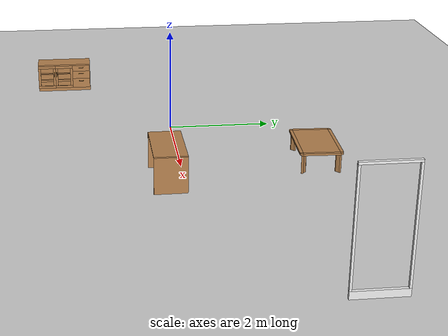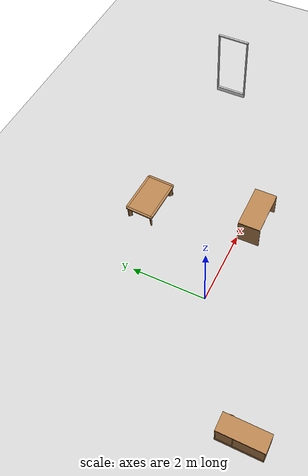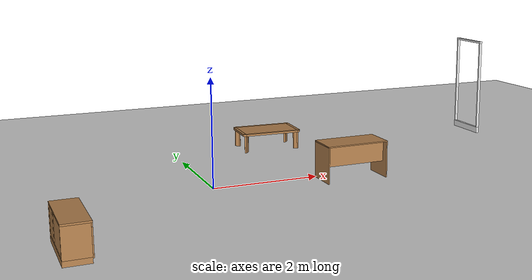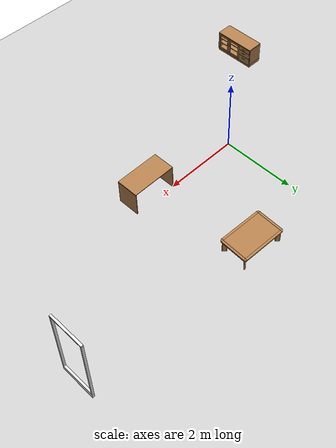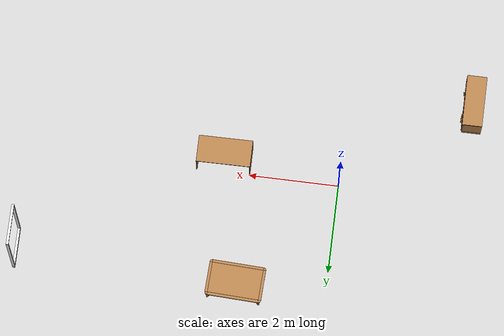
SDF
<sdf version="1.7">
 <world name="default">
  <model name="ground_plane">
   <static>1</static>
   <link name="link">
    <collision name="collision">
     <geometry><plane><normal>0 0 1</normal><size>100 100</size></plane></geometry>
     <surface>
      <contact><collide_bitmask>65535</collide_bitmask></contact>
      <friction><ode><mu>100</mu><mu2>50</mu2></ode></friction>
     </surface>
    </collision>
    <visual name="visual">
     <cast_shadows>0</cast_shadows>
     <geometry><plane><normal>0 0 1</normal><size>100 100</size></plane></geometry>
     <material>
      <script><uri>file://media/materials/scripts/gazebo.material</uri><name>Gazebo/Grey</name></script>
     </material>
    </visual>
   </link>
  </model>
  <model name="living_sideboard">
   <link name="link">
    <inertial>
     <mass>10</mass>
     <inertia><ixx>1</ixx><ixy>0</ixy><ixz>0</ixz><iyy>1</iyy><iyz>0</iyz><izz>1</izz></inertia>
    </inertial>
    <visual name="left_board">
     <pose>-0.23 0.01 0.3375 0 -0 0</pose>
     <geometry><box><size>0.42 0.02 0.495</size></box></geometry>
     <material>
      <script><uri>model://base_materials/wood/scripts/wood.material</uri><name>base_materials/wood</name></script>
     </material>
    </visual>
    <collision name="collision_left_board">
     <pose>-0.23 0.01 0.3375 0 -0 0</pose>
     <geometry><box><size>0.42 0.02 0.495</size></box></geometry>
    </collision>
    <visual name="back_board">
     <pose>-0.42 0.575 0.2925 0 -0 0</pose>
     <geometry><box><size>0.02 1.11 0.585</size></box></geometry>
     <material>
      <script><uri>model://base_materials/wood/scripts/wood.material</uri><name>base_materials/wood</name></script>
     </material>
    </visual>
    <collision name="collision_back_board">
     <pose>-0.42 0.575 0.2925 0 -0 0</pose>
     <geometry><box><size>0.02 1.11 0.585</size></box></geometry>
    </collision>
    <visual name="right_board">
     <pose>-0.23 1.14 0.3375 0 -0 0</pose>
     <geometry><box><size>0.42 0.02 0.495</size></box></geometry>
     <material>
      <script><uri>model://base_materials/wood/scripts/wood.material</uri><name>base_materials/wood</name></script>
     </material>
    </visual>
    <collision name="collision_right_board">
     <pose>-0.23 1.14 0.3375 0 -0 0</pose>
     <geometry><box><size>0.42 0.02 0.495</size></box></geometry>
    </collision>
    <visual name="center_vertical_board1">
     <pose>-0.23 0.74 0.3375 0 -0 0</pose>
     <geometry><box><size>0.42 0.02 0.495</size></box></geometry>
     <material>
      <script><uri>model://base_materials/wood/scripts/wood.material</uri><name>base_materials/wood</name></script>
     </material>
    </visual>
    <collision name="collision_center_vertical_board1">
     <pose>-0.23 0.74 0.3375 0 -0 0</pose>
     <geometry><box><size>0.42 0.02 0.495</size></box></geometry>
    </collision>
    <visual name="top_board">
     <pose>-0.22 0.575 0.6 0 -0 0</pose>
     <geometry><box><size>0.44 1.15 0.03</size></box></geometry>
     <material>
      <script><uri>model://base_materials/wood/scripts/wood.material</uri><name>base_materials/wood</name></script>
     </material>
    </visual>
    <collision name="collision_top_board">
     <pose>-0.22 0.575 0.6 0 -0 0</pose>
     <geometry><box><size>0.44 1.15 0.03</size></box></geometry>
    </collision>
    <visual name="bottom_board">
     <pose>-0.23 0.575 0.045 0 -0 0</pose>
     <geometry><box><size>0.42 1.15 0.09</size></box></geometry>
     <material>
      <script><uri>model://base_materials/wood/scripts/wood.material</uri><name>base_materials/wood</name></script>
     </material>
    </visual>
    <collision name="collision_bottom_board">
     <pose>-0.23 0.575 0.045 0 -0 0</pose>
     <geometry><box><size>0.42 1.15 0.09</size></box></geometry>
    </collision>
    <visual name="1st_shelf">
     <pose>-0.225 0.37 0.259 0 -0 0</pose>
     <geometry><box><size>0.36 0.72 0.018</size></box></geometry>
     <material>
      <script><uri>model://base_materials/wood/scripts/wood.material</uri><name>base_materials/wood</name></script>
     </material>
    </visual>
    <collision name="collision_1st_shelf">
     <pose>-0.225 0.37 0.259 0 -0 0</pose>
     <geometry><box><size>0.36 0.72 0.018</size></box></geometry>
    </collision>
    <visual name="2nd_shelf">
     <pose>-0.225 0.37 0.407 0 -0 0</pose>
     <geometry><box><size>0.36 0.72 0.018</size></box></geometry>
     <material>
      <script><uri>model://base_materials/wood/scripts/wood.material</uri><name>base_materials/wood</name></script>
     </material>
    </visual>
    <collision name="collision_2nd_shelf">
     <pose>-0.225 0.37 0.407 0 -0 0</pose>
     <geometry><box><size>0.36 0.72 0.018</size></box></geometry>
    </collision>
    <visual name="1st_drawer">
     <pose>-0.2025 0.95 0.52 0 -0 0</pose>
     <geometry><box><size>0.405 0.38 0.13</size></box></geometry>
     <material>
      <script><uri>model://base_materials/wood/scripts/wood.material</uri><name>base_materials/wood</name></script>
     </material>
    </visual>
    <collision name="collision_1st_drawer">
     <pose>-0.2025 0.95 0.52 0 -0 0</pose>
     <geometry><box><size>0.405 0.38 0.13</size></box></geometry>
    </collision>
    <visual name="1st_drawer_handle_l1">
     <pose>0.015 0.9015 0.535 3.14159 1.57079 3.14159</pose>
     <geometry><cylinder><radius>0.006</radius><length>0.03</length></cylinder></geometry>
     <material>
      <ambient>1 0.84314 0 1</ambient>
      <diffuse>1 0.84314 0 1</diffuse>
      <specular>0.1 0.1 0.1 1</specular>
     </material>
    </visual>
    <collision name="collision_1st_drawer_handle_l1">
     <pose>0.015 0.9015 0.535 3.14159 1.57079 3.14159</pose>
     <geometry><cylinder><radius>0.006</radius><length>0.03</length></cylinder></geometry>
    </collision>
    <visual name="1st_drawer_handle_l2">
     <pose>0.03 0.9015 0.535 0 -0 0</pose>
     <geometry><sphere><radius>0.006</radius></sphere></geometry>
     <material>
      <ambient>1 0.84314 0 1</ambient>
      <diffuse>1 0.84314 0 1</diffuse>
      <specular>0.1 0.1 0.1 1</specular>
     </material>
    </visual>
    <collision name="collision_1st_drawer_handle_l2">
     <pose>0.03 0.9015 0.535 0 -0 0</pose>
     <geometry><sphere><radius>0.006</radius></sphere></geometry>
    </collision>
    <visual name="1st_drawer_handle_r1">
     <pose>0.015 0.9985 0.535 3.14159 1.57079 3.14159</pose>
     <geometry><cylinder><radius>0.006</radius><length>0.03</length></cylinder></geometry>
     <material>
      <ambient>1 0.84314 0 1</ambient>
      <diffuse>1 0.84314 0 1</diffuse>
      <specular>0.1 0.1 0.1 1</specular>
     </material>
    </visual>
    <collision name="collision_1st_drawer_handle_r1">
     <pose>0.015 0.9985 0.535 3.14159 1.57079 3.14159</pose>
     <geometry><cylinder><radius>0.006</radius><length>0.03</length></cylinder></geometry>
    </collision>
    <visual name="1st_drawer_handle_r2">
     <pose>0.03 0.9985 0.535 0 -0 0</pose>
     <geometry><sphere><radius>0.006</radius></sphere></geometry>
     <material>
      <ambient>1 0.84314 0 1</ambient>
      <diffuse>1 0.84314 0 1</diffuse>
      <specular>0.1 0.1 0.1 1</specular>
     </material>
    </visual>
    <collision name="collision_1st_drawer_handle_r2">
     <pose>0.03 0.9985 0.535 0 -0 0</pose>
     <geometry><sphere><radius>0.006</radius></sphere></geometry>
    </collision>
    <visual name="1st_drawer_handle_center">
     <pose>0.03 0.95 0.535 1.5708 -0 0</pose>
     <geometry><cylinder><radius>0.006</radius><length>0.097</length></cylinder></geometry>
     <material>
      <script><uri>model://base_materials/wood/scripts/wood.material</uri><name>base_materials/wood</name></script>
     </material>
    </visual>
    <collision name="collision_1st_drawer_handle_center">
     <pose>0.03 0.95 0.535 1.5708 -0 0</pose>
     <geometry><cylinder><radius>0.006</radius><length>0.097</length></cylinder></geometry>
    </collision>
    <visual name="2nd_drawer">
     <pose>-0.2025 0.95 0.37 0 -0 0</pose>
     <geometry><box><size>0.405 0.38 0.17</size></box></geometry>
     <material>
      <script><uri>model://base_materials/wood/scripts/wood.material</uri><name>base_materials/wood</name></script>
     </material>
    </visual>
    <collision name="collision_2nd_drawer">
     <pose>-0.2025 0.95 0.37 0 -0 0</pose>
     <geometry><box><size>0.405 0.38 0.17</size></box></geometry>
    </collision>
    <visual name="2nd_drawer_handle_l1">
     <pose>0.015 0.9015 0.405 3.14159 1.57079 3.14159</pose>
     <geometry><cylinder><radius>0.006</radius><length>0.03</length></cylinder></geometry>
     <material>
      <ambient>1 0.84314 0 1</ambient>
      <diffuse>1 0.84314 0 1</diffuse>
      <specular>0.1 0.1 0.1 1</specular>
     </material>
    </visual>
    <collision name="collision_2nd_drawer_handle_l1">
     <pose>0.015 0.9015 0.405 3.14159 1.57079 3.14159</pose>
     <geometry><cylinder><radius>0.006</radius><length>0.03</length></cylinder></geometry>
    </collision>
    <visual name="2nd_drawer_handle_l2">
     <pose>0.03 0.9015 0.405 0 -0 0</pose>
     <geometry><sphere><radius>0.006</radius></sphere></geometry>
     <material>
      <ambient>1 0.84314 0 1</ambient>
      <diffuse>1 0.84314 0 1</diffuse>
      <specular>0.1 0.1 0.1 1</specular>
     </material>
    </visual>
    <collision name="collision_2nd_drawer_handle_l2">
     <pose>0.03 0.9015 0.405 0 -0 0</pose>
     <geometry><sphere><radius>0.006</radius></sphere></geometry>
    </collision>
    <visual name="2nd_drawer_handle_r1">
     <pose>0.015 0.9985 0.405 3.14159 1.57079 3.14159</pose>
     <geometry><cylinder><radius>0.006</radius><length>0.03</length></cylinder></geometry>
     <material>
      <ambient>1 0.84314 0 1</ambient>
      <diffuse>1 0.84314 0 1</diffuse>
      <specular>0.1 0.1 0.1 1</specular>
     </material>
    </visual>
    <collision name="collision_2nd_drawer_handle_r1">
     <pose>0.015 0.9985 0.405 3.14159 1.57079 3.14159</pose>
     <geometry><cylinder><radius>0.006</radius><length>0.03</length></cylinder></geometry>
    </collision>
    <visual name="2nd_drawer_handle_r2">
     <pose>0.03 0.9985 0.405 0 -0 0</pose>
     <geometry><sphere><radius>0.006</radius></sphere></geometry>
     <material>
      <ambient>1 0.84314 0 1</ambient>
      <diffuse>1 0.84314 0 1</diffuse>
      <specular>0.1 0.1 0.1 1</specular>
     </material>
    </visual>
    <collision name="collision_2nd_drawer_handle_r2">
     <pose>0.03 0.9985 0.405 0 -0 0</pose>
     <geometry><sphere><radius>0.006</radius></sphere></geometry>
    </collision>
    <visual name="2nd_drawer_handle_center">
     <pose>0.03 0.95 0.405 1.5708 -0 0</pose>
     <geometry><cylinder><radius>0.006</radius><length>0.097</length></cylinder></geometry>
     <material>
      <script><uri>model://base_materials/wood/scripts/wood.material</uri><name>base_materials/wood</name></script>
     </material>
    </visual>
    <collision name="collision_2nd_drawer_handle_center">
     <pose>0.03 0.95 0.405 1.5708 -0 0</pose>
     <geometry><cylinder><radius>0.006</radius><length>0.097</length></cylinder></geometry>
    </collision>
    <visual name="3rd_drawer">
     <pose>-0.2025 0.95 0.18 0 -0 0</pose>
     <geometry><box><size>0.405 0.38 0.21</size></box></geometry>
     <material>
      <script><uri>model://base_materials/wood/scripts/wood.material</uri><name>base_materials/wood</name></script>
     </material>
    </visual>
    <collision name="collision_3rd_drawer">
     <pose>-0.2025 0.95 0.18 0 -0 0</pose>
     <geometry><box><size>0.405 0.38 0.21</size></box></geometry>
    </collision>
    <visual name="3rd_drawer_handle_l1">
     <pose>0.015 0.9015 0.235 3.14159 1.57079 3.14159</pose>
     <geometry><cylinder><radius>0.006</radius><length>0.03</length></cylinder></geometry>
     <material>
      <ambient>1 0.84314 0 1</ambient>
      <diffuse>1 0.84314 0 1</diffuse>
      <specular>0.1 0.1 0.1 1</specular>
     </material>
    </visual>
    <collision name="collision_3rd_drawer_handle_l1">
     <pose>0.015 0.9015 0.235 3.14159 1.57079 3.14159</pose>
     <geometry><cylinder><radius>0.006</radius><length>0.03</length></cylinder></geometry>
    </collision>
    <visual name="3rd_drawer_handle_l2">
     <pose>0.03 0.9015 0.235 0 -0 0</pose>
     <geometry><sphere><radius>0.006</radius></sphere></geometry>
     <material>
      <ambient>1 0.84314 0 1</ambient>
      <diffuse>1 0.84314 0 1</diffuse>
      <specular>0.1 0.1 0.1 1</specular>
     </material>
    </visual>
    <collision name="collision_3rd_drawer_handle_l2">
     <pose>0.03 0.9015 0.235 0 -0 0</pose>
     <geometry><sphere><radius>0.006</radius></sphere></geometry>
    </collision>
    <visual name="3rd_drawer_handle_r1">
     <pose>0.015 0.9985 0.235 3.14159 1.57079 3.14159</pose>
     <geometry><cylinder><radius>0.006</radius><length>0.03</length></cylinder></geometry>
     <material>
      <ambient>1 0.84314 0 1</ambient>
      <diffuse>1 0.84314 0 1</diffuse>
      <specular>0.1 0.1 0.1 1</specular>
     </material>
    </visual>
    <collision name="collision_3rd_drawer_handle_r1">
     <pose>0.015 0.9985 0.235 3.14159 1.57079 3.14159</pose>
     <geometry><cylinder><radius>0.006</radius><length>0.03</length></cylinder></geometry>
    </collision>
    <visual name="3rd_drawer_handle_r2">
     <pose>0.03 0.9985 0.235 0 -0 0</pose>
     <geometry><sphere><radius>0.006</radius></sphere></geometry>
     <material>
      <ambient>1 0.84314 0 1</ambient>
      <diffuse>1 0.84314 0 1</diffuse>
      <specular>0.1 0.1 0.1 1</specular>
     </material>
    </visual>
    <collision name="collision_3rd_drawer_handle_r2">
     <pose>0.03 0.9985 0.235 0 -0 0</pose>
     <geometry><sphere><radius>0.006</radius></sphere></geometry>
    </collision>
    <visual name="3rd_drawer_handle_center">
     <pose>0.03 0.95 0.235 1.5708 -0 0</pose>
     <geometry><cylinder><radius>0.006</radius><length>0.097</length></cylinder></geometry>
     <material>
      <script><uri>model://base_materials/wood/scripts/wood.material</uri><name>base_materials/wood</name></script>
     </material>
    </visual>
    <collision name="collision_3rd_drawer_handle_center">
     <pose>0.03 0.95 0.235 1.5708 -0 0</pose>
     <geometry><cylinder><radius>0.006</radius><length>0.097</length></cylinder></geometry>
    </collision>
    <visual name="left_door_left_frame">
     <pose>-0.01 0.025 0.3275 0 -0 0</pose>
     <geometry><box><size>0.02 0.05 0.405</size></box></geometry>
     <material>
      <script><uri>model://base_materials/wood/scripts/wood.material</uri><name>base_materials/wood</name></script>
     </material>
    </visual>
    <collision name="collision_left_door_left_frame">
     <pose>-0.01 0.025 0.3275 0 -0 0</pose>
     <geometry><box><size>0.02 0.05 0.405</size></box></geometry>
    </collision>
    <visual name="left_door_right_frame">
     <pose>-0.01 0.355 0.3275 0 -0 0</pose>
     <geometry><box><size>0.02 0.05 0.405</size></box></geometry>
     <material>
      <script><uri>model://base_materials/wood/scripts/wood.material</uri><name>base_materials/wood</name></script>
     </material>
    </visual>
    <collision name="collision_left_door_right_frame">
     <pose>-0.01 0.355 0.3275 0 -0 0</pose>
     <geometry><box><size>0.02 0.05 0.405</size></box></geometry>
    </collision>
    <visual name="left_door_handle_top1">
     <pose>0.015 0.355 0.4475 3.14159 1.57079 3.14159</pose>
     <geometry><cylinder><radius>0.006</radius><length>0.03</length></cylinder></geometry>
     <material>
      <ambient>1 0.84314 0 1</ambient>
      <diffuse>1 0.84314 0 1</diffuse>
      <specular>0.1 0.1 0.1 1</specular>
     </material>
    </visual>
    <collision name="collision_left_door_handle_top1">
     <pose>0.015 0.355 0.4475 3.14159 1.57079 3.14159</pose>
     <geometry><cylinder><radius>0.006</radius><length>0.03</length></cylinder></geometry>
    </collision>
    <visual name="left_door_handle_top2">
     <pose>0.03 0.355 0.4475 0 -0 0</pose>
     <geometry><sphere><radius>0.006</radius></sphere></geometry>
     <material>
      <ambient>1 0.84314 0 1</ambient>
      <diffuse>1 0.84314 0 1</diffuse>
      <specular>0.1 0.1 0.1 1</specular>
     </material>
    </visual>
    <collision name="collision_left_door_handle_top2">
     <pose>0.03 0.355 0.4475 0 -0 0</pose>
     <geometry><sphere><radius>0.006</radius></sphere></geometry>
    </collision>
    <visual name="left_door_handle_bottom1">
     <pose>0.015 0.355 0.3505 3.14159 1.57079 3.14159</pose>
     <geometry><cylinder><radius>0.006</radius><length>0.03</length></cylinder></geometry>
     <material>
      <ambient>1 0.84314 0 1</ambient>
      <diffuse>1 0.84314 0 1</diffuse>
      <specular>0.1 0.1 0.1 1</specular>
     </material>
    </visual>
    <collision name="collision_left_door_handle_bottom1">
     <pose>0.015 0.355 0.3505 3.14159 1.57079 3.14159</pose>
     <geometry><cylinder><radius>0.006</radius><length>0.03</length></cylinder></geometry>
    </collision>
    <visual name="left_door_handle_bottom2">
     <pose>0.03 0.355 0.3505 0 -0 0</pose>
     <geometry><sphere><radius>0.006</radius></sphere></geometry>
     <material>
      <ambient>1 0.84314 0 1</ambient>
      <diffuse>1 0.84314 0 1</diffuse>
      <specular>0.1 0.1 0.1 1</specular>
     </material>
    </visual>
    <collision name="collision_left_door_handle_bottom2">
     <pose>0.03 0.355 0.3505 0 -0 0</pose>
     <geometry><sphere><radius>0.006</radius></sphere></geometry>
    </collision>
    <visual name="left_door_handle_center">
     <pose>0.03 0.355 0.399 0 -0 0</pose>
     <geometry><cylinder><radius>0.006</radius><length>0.097</length></cylinder></geometry>
     <material>
      <script><uri>model://base_materials/wood/scripts/wood.material</uri><name>base_materials/wood</name></script>
     </material>
    </visual>
    <collision name="collision_left_door_handle_center">
     <pose>0.03 0.355 0.399 0 -0 0</pose>
     <geometry><cylinder><radius>0.006</radius><length>0.097</length></cylinder></geometry>
    </collision>
    <visual name="left_door_top_frame">
     <pose>-0.01 0.19 0.5575 0 -0 0</pose>
     <geometry><box><size>0.02 0.38 0.055</size></box></geometry>
     <material>
      <script><uri>model://base_materials/wood/scripts/wood.material</uri><name>base_materials/wood</name></script>
     </material>
    </visual>
    <collision name="collision_left_door_top_frame">
     <pose>-0.01 0.19 0.5575 0 -0 0</pose>
     <geometry><box><size>0.02 0.38 0.055</size></box></geometry>
    </collision>
    <visual name="left_door_bottom_frame">
     <pose>-0.01 0.19 0.1 0 -0 0</pose>
     <geometry><box><size>0.02 0.38 0.05</size></box></geometry>
     <material>
      <script><uri>model://base_materials/wood/scripts/wood.material</uri><name>base_materials/wood</name></script>
     </material>
    </visual>
    <collision name="collision_left_door_bottom_frame">
     <pose>-0.01 0.19 0.1 0 -0 0</pose>
     <geometry><box><size>0.02 0.38 0.05</size></box></geometry>
    </collision>
    <visual name="right_door_left_frame">
     <pose>-0.01 0.405 0.3275 0 -0 0</pose>
     <geometry><box><size>0.02 0.05 0.405</size></box></geometry>
     <material>
      <script><uri>model://base_materials/wood/scripts/wood.material</uri><name>base_materials/wood</name></script>
     </material>
    </visual>
    <collision name="collision_right_door_left_frame">
     <pose>-0.01 0.405 0.3275 0 -0 0</pose>
     <geometry><box><size>0.02 0.05 0.405</size></box></geometry>
    </collision>
    <visual name="right_door_right_frame">
     <pose>-0.01 0.735 0.3275 0 -0 0</pose>
     <geometry><box><size>0.02 0.05 0.405</size></box></geometry>
     <material>
      <script><uri>model://base_materials/wood/scripts/wood.material</uri><name>base_materials/wood</name></script>
     </material>
    </visual>
    <collision name="collision_right_door_right_frame">
     <pose>-0.01 0.735 0.3275 0 -0 0</pose>
     <geometry><box><size>0.02 0.05 0.405</size></box></geometry>
    </collision>
    <visual name="right_door_top_frame">
     <pose>-0.01 0.57 0.5575 0 -0 0</pose>
     <geometry><box><size>0.02 0.38 0.055</size></box></geometry>
     <material>
      <script><uri>model://base_materials/wood/scripts/wood.material</uri><name>base_materials/wood</name></script>
     </material>
    </visual>
    <collision name="collision_right_door_top_frame">
     <pose>-0.01 0.57 0.5575 0 -0 0</pose>
     <geometry><box><size>0.02 0.38 0.055</size></box></geometry>
    </collision>
    <visual name="right_door_bottom_frame">
     <pose>-0.01 0.57 0.1 0 -0 0</pose>
     <geometry><box><size>0.02 0.38 0.05</size></box></geometry>
     <material>
      <script><uri>model://base_materials/wood/scripts/wood.material</uri><name>base_materials/wood</name></script>
     </material>
    </visual>
    <collision name="collision_right_door_bottom_frame">
     <pose>-0.01 0.57 0.1 0 -0 0</pose>
     <geometry><box><size>0.02 0.38 0.05</size></box></geometry>
    </collision>
    <visual name="right_door_handle_top1">
     <pose>0.015 0.405 0.4475 3.14159 1.57079 3.14159</pose>
     <geometry><cylinder><radius>0.006</radius><length>0.03</length></cylinder></geometry>
     <material>
      <ambient>1 0.84314 0 1</ambient>
      <diffuse>1 0.84314 0 1</diffuse>
      <specular>0.1 0.1 0.1 1</specular>
     </material>
    </visual>
    <collision name="collision_right_door_handle_top1">
     <pose>0.015 0.405 0.4475 3.14159 1.57079 3.14159</pose>
     <geometry><cylinder><radius>0.006</radius><length>0.03</length></cylinder></geometry>
    </collision>
    <visual name="right_door_handle_top2">
     <pose>0.03 0.405 0.4475 0 -0 0</pose>
     <geometry><sphere><radius>0.006</radius></sphere></geometry>
     <material>
      <ambient>1 0.84314 0 1</ambient>
      <diffuse>1 0.84314 0 1</diffuse>
      <specular>0.1 0.1 0.1 1</specular>
     </material>
    </visual>
    <collision name="collision_right_door_handle_top2">
     <pose>0.03 0.405 0.4475 0 -0 0</pose>
     <geometry><sphere><radius>0.006</radius></sphere></geometry>
    </collision>
    <visual name="right_door_handle_bottom1">
     <pose>0.015 0.405 0.3505 3.14159 1.57079 3.14159</pose>
     <geometry><cylinder><radius>0.006</radius><length>0.03</length></cylinder></geometry>
     <material>
      <ambient>1 0.84314 0 1</ambient>
      <diffuse>1 0.84314 0 1</diffuse>
      <specular>0.1 0.1 0.1 1</specular>
     </material>
    </visual>
    <collision name="collision_right_door_handle_bottom1">
     <pose>0.015 0.405 0.3505 3.14159 1.57079 3.14159</pose>
     <geometry><cylinder><radius>0.006</radius><length>0.03</length></cylinder></geometry>
    </collision>
    <visual name="right_door_handle_bottom2">
     <pose>0.03 0.405 0.3505 0 -0 0</pose>
     <geometry><sphere><radius>0.006</radius></sphere></geometry>
     <material>
      <ambient>1 0.84314 0 1</ambient>
      <diffuse>1 0.84314 0 1</diffuse>
      <specular>0.1 0.1 0.1 1</specular>
     </material>
    </visual>
    <collision name="collision_right_door_handle_bottom2">
     <pose>0.03 0.405 0.3505 0 -0 0</pose>
     <geometry><sphere><radius>0.006</radius></sphere></geometry>
    </collision>
    <visual name="right_door_handle_center">
     <pose>0.03 0.405 0.399 0 -0 0</pose>
     <geometry><cylinder><radius>0.006</radius><length>0.097</length></cylinder></geometry>
     <material>
      <script><uri>model://base_materials/wood/scripts/wood.material</uri><name>base_materials/wood</name></script>
     </material>
    </visual>
    <collision name="collision_right_door_handle_center">
     <pose>0.03 0.4 0.399 0 -0 0</pose>
     <geometry><cylinder><radius>0.006</radius><length>0.097</length></cylinder></geometry>
    </collision>
    <velocity_decay><linear>0</linear><angular>0</angular></velocity_decay>
   </link>
   <static>1</static>
   <pose>-2.56097 -2.72652 0 0 -0 0</pose>
  </model>
  <model name="office_desk">
   <link name="link">
    <inertial>
     <mass>10</mass>
     <inertia><ixx>1</ixx><ixy>0</ixy><ixz>0</ixz><iyy>1</iyy><iyz>0</iyz><izz>1</izz></inertia>
    </inertial>
    <visual name="top_board">
     <pose>-0.3 0.6 0.69 0 -0 0</pose>
     <geometry><box><size>0.6 1.2 0.02</size></box></geometry>
     <material>
      <script>
       <uri>model://base_materials/wood/scripts/wood.material</uri>
       <name>base_materials/dark_wood</name>
      </script>
     </material>
    </visual>
    <collision name="collision_top_board">
     <pose>-0.3 0.6 0.69 0 -0 0</pose>
     <geometry><box><size>0.6 1.2 0.02</size></box></geometry>
    </collision>
    <visual name="left_board">
     <pose>-0.3 0.01 0.34 0 -0 0</pose>
     <geometry><box><size>0.6 0.02 0.68</size></box></geometry>
     <material>
      <script>
       <uri>model://base_materials/wood/scripts/wood.material</uri>
       <name>base_materials/dark_wood</name>
      </script>
     </material>
    </visual>
    <collision name="collision_left_board">
     <pose>-0.3 0.01 0.34 0 -0 0</pose>
     <geometry><box><size>0.6 0.02 0.68</size></box></geometry>
    </collision>
    <visual name="right_board">
     <pose>-0.3 1.19 0.34 0 -0 0</pose>
     <geometry><box><size>0.6 0.02 0.68</size></box></geometry>
     <material>
      <script>
       <uri>model://base_materials/wood/scripts/wood.material</uri>
       <name>base_materials/dark_wood</name>
      </script>
     </material>
    </visual>
    <collision name="collision_right_board">
     <pose>-0.3 1.19 0.34 0 -0 0</pose>
     <geometry><box><size>0.6 0.02 0.68</size></box></geometry>
    </collision>
    <visual name="center_board">
     <pose>-0.14 0.6 0.49 0 -0 0</pose>
     <geometry><box><size>0.02 1.16 0.4</size></box></geometry>
     <material>
      <script>
       <uri>model://base_materials/wood/scripts/wood.material</uri>
       <name>base_materials/dark_wood</name>
      </script>
     </material>
    </visual>
    <collision name="ollision_center_board">
     <pose>-0.14 0.6 0.49 0 -0 0</pose>
     <geometry><box><size>0.02 1.16 0.4</size></box></geometry>
    </collision>
    <velocity_decay><linear>0</linear><angular>0</angular></velocity_decay>
   </link>
   <static>1</static>
   <pose>1.98687 -0.605297 0 0 0 -1.56415</pose>
  </model>
  <model name="full_glass_wall_55_900_2090">
   <link name="link">
    <inertial>
     <mass>50</mass>
     <inertia><ixx>1</ixx><ixy>0</ixy><ixz>0</ixz><iyy>1</iyy><iyz>0</iyz><izz>1</izz></inertia>
    </inertial>
    <visual name="bottom_frame">
     <pose>0 0 0.065 0 -0 0</pose>
     <geometry><box><size>0.055 0.9 0.13</size></box></geometry>
     <material>
      <script><uri>model://base_materials/color/scripts</uri><name>hsr_color/white</name></script>
     </material>
    </visual>
    <collision name="collision_bottom_frame">
     <pose>0 0 0.065 0 -0 0</pose>
     <geometry><box><size>0.055 0.9 0.13</size></box></geometry>
    </collision>
    <visual name="right_frame">
     <pose>0 0.4325 1.09 0 -0 0</pose>
     <geometry><box><size>0.055 0.035 1.92</size></box></geometry>
     <material>
      <script><uri>model://base_materials/color/scripts</uri><name>hsr_color/white</name></script>
     </material>
    </visual>
    <collision name="collision_right_frame">
     <pose>0 0.4325 1.09 0 -0 0</pose>
     <geometry><box><size>0.055 0.035 1.92</size></box></geometry>
    </collision>
    <visual name="left_frame">
     <pose>0 -0.4325 1.09 0 -0 0</pose>
     <geometry><box><size>0.055 0.035 1.92</size></box></geometry>
     <material>
      <script><uri>model://base_materials/color/scripts</uri><name>hsr_color/white</name></script>
     </material>
    </visual>
    <collision name="collision_left_frame">
     <pose>0 -0.4325 1.09 0 -0 0</pose>
     <geometry><box><size>0.055 0.035 1.92</size></box></geometry>
    </collision>
    <visual name="top_frame">
     <pose>0 0 2.07 0 -0 0</pose>
     <geometry><box><size>0.055 0.9 0.04</size></box></geometry>
     <material>
      <script><uri>model://base_materials/color/scripts</uri><name>hsr_color/white</name></script>
     </material>
    </visual>
    <collision name="collision_top_frame">
     <pose>0 0 2.07 0 -0 0</pose>
     <geometry><box><size>0.055 0.9 0.04</size></box></geometry>
    </collision>
    <velocity_decay><linear>0</linear><angular>0</angular></velocity_decay>
   </link>
   <static>1</static>
   <pose>6.89729 2.2766 -0 0 -0 0</pose>
  </model>
  <model name="kitchen_lowtable">
   <link name="link">
    <inertial>
     <mass>10</mass>
     <inertia><ixx>1</ixx><ixy>0</ixy><ixz>0</ixz><iyy>1</iyy><iyz>0</iyz><izz>1</izz></inertia>
    </inertial>
    <visual name="center_board">
     <pose>0 0 0.38 0 -0 0</pose>
     <geometry><box><size>0.68 1.13 0.04</size></box></geometry>
     <material>
      <script><uri>model://base_materials/wood/scripts/wood.material</uri><name>base_materials/wood</name></script>
     </material>
    </visual>
    <collision name="collision_center_board">
     <pose>0 0 0.38 0 -0 0</pose>
     <geometry><box><size>0.68 1.13 0.04</size></box></geometry>
    </collision>
    <visual name="front_board">
     <pose>0.37 0 0.38 0 -0 0</pose>
     <geometry><box><size>0.06 1.13 0.04</size></box></geometry>
     <material>
      <script><uri>model://base_materials/wood/scripts/wood.material</uri><name>base_materials/wood</name></script>
     </material>
    </visual>
    <collision name="collision_front_board">
     <pose>0.37 0 0.38 0 -0 0</pose>
     <geometry><box><size>0.06 1.13 0.04</size></box></geometry>
    </collision>
    <visual name="back_board">
     <pose>-0.37 0 0.38 0 -0 0</pose>
     <geometry><box><size>0.06 1.13 0.04</size></box></geometry>
     <material>
      <script><uri>model://base_materials/wood/scripts/wood.material</uri><name>base_materials/wood</name></script>
     </material>
    </visual>
    <collision name="collision_back_board">
     <pose>-0.37 0 0.38 0 -0 0</pose>
     <geometry><box><size>0.06 1.13 0.04</size></box></geometry>
    </collision>
    <visual name="right_board">
     <pose>0 0.595 0.38 0 -0 0</pose>
     <geometry><box><size>0.68 0.06 0.04</size></box></geometry>
     <material>
      <script><uri>model://base_materials/wood/scripts/wood.material</uri><name>base_materials/wood</name></script>
     </material>
    </visual>
    <collision name="collision_right_board">
     <pose>0 0.595 0.38 0 -0 0</pose>
     <geometry><box><size>0.68 0.06 0.04</size></box></geometry>
    </collision>
    <visual name="left_board">
     <pose>0 -0.595 0.38 0 -0 0</pose>
     <geometry><box><size>0.68 0.06 0.04</size></box></geometry>
     <material>
      <script><uri>model://base_materials/wood/scripts/wood.material</uri><name>base_materials/wood</name></script>
     </material>
    </visual>
    <collision name="collision_left_board">
     <pose>0 -0.595 0.38 0 -0 0</pose>
     <geometry><box><size>0.68 0.06 0.04</size></box></geometry>
    </collision>
    <visual name="front_right_corner_board">
     <pose>0.34 0.565 0.38 0 -0 0</pose>
     <geometry><cylinder><radius>0.06</radius><length>0.039</length></cylinder></geometry>
     <material>
      <script><uri>model://base_materials/wood/scripts/wood.material</uri><name>base_materials/wood</name></script>
     </material>
    </visual>
    <collision name="collision_front_right_corner_board">
     <pose>0.34 0.565 0.38 0 -0 0</pose>
     <geometry><cylinder><radius>0.06</radius><length>0.039</length></cylinder></geometry>
    </collision>
    <visual name="front_left_corner_board">
     <pose>0.34 -0.565 0.38 0 -0 0</pose>
     <geometry><cylinder><radius>0.06</radius><length>0.039</length></cylinder></geometry>
     <material>
      <script><uri>model://base_materials/wood/scripts/wood.material</uri><name>base_materials/wood</name></script>
     </material>
    </visual>
    <collision name="collision_front_left_corner_board">
     <pose>0.34 -0.565 0.38 0 -0 0</pose>
     <geometry><cylinder><radius>0.06</radius><length>0.039</length></cylinder></geometry>
    </collision>
    <visual name="front_back_right_corner_board">
     <pose>-0.34 0.565 0.38 0 -0 0</pose>
     <geometry><cylinder><radius>0.06</radius><length>0.039</length></cylinder></geometry>
     <material>
      <script><uri>model://base_materials/wood/scripts/wood.material</uri><name>base_materials/wood</name></script>
     </material>
    </visual>
    <collision name="collision_back_right_corner_board">
     <pose>-0.34 0.565 0.38 0 -0 0</pose>
     <geometry><cylinder><radius>0.06</radius><length>0.039</length></cylinder></geometry>
    </collision>
    <visual name="front_back_left_corner_board">
     <pose>-0.34 -0.565 0.38 0 -0 0</pose>
     <geometry><cylinder><radius>0.06</radius><length>0.039</length></cylinder></geometry>
     <material>
      <script><uri>model://base_materials/wood/scripts/wood.material</uri><name>base_materials/wood</name></script>
     </material>
    </visual>
    <collision name="collision_back_left_corner_board">
     <pose>-0.34 -0.565 0.38 0 -0 0</pose>
     <geometry><cylinder><radius>0.06</radius><length>0.039</length></cylinder></geometry>
    </collision>
    <visual name="front_left_corner_frame1">
     <pose>0.345858 -0.57086 0.18 0 -0 0</pose>
     <geometry><cylinder><radius>0.02</radius><length>0.36</length></cylinder></geometry>
     <material>
      <script><uri>model://base_materials/wood/scripts/wood.material</uri><name>base_materials/wood</name></script>
     </material>
    </visual>
    <collision name="collision_front_left_corner_frame1">
     <pose>0.345858 -0.57086 0.18 0 -0 0</pose>
     <geometry><cylinder><radius>0.02</radius><length>0.36</length></cylinder></geometry>
    </collision>
    <visual name="front_left_corner_frame2">
     <pose>0.317574 -0.54257 0.18 0 -0 0.7854</pose>
     <geometry><box><size>0.04 0.08 0.36</size></box></geometry>
     <material>
      <script><uri>model://base_materials/wood/scripts/wood.material</uri><name>base_materials/wood</name></script>
     </material>
    </visual>
    <collision name="collision_front_left_corner_frame2">
     <pose>0.317574 -0.54257 0.18 0 -0 0.7854</pose>
     <geometry><box><size>0.04 0.08 0.36</size></box></geometry>
    </collision>
    <visual name="front_left_corner_frame3">
     <pose>0.289289 -0.51429 0.18 0 -0 0</pose>
     <geometry><cylinder><radius>0.02</radius><length>0.36</length></cylinder></geometry>
     <material>
      <script><uri>model://base_materials/wood/scripts/wood.material</uri><name>base_materials/wood</name></script>
     </material>
    </visual>
    <collision name="collision_front_left_corner_frame3">
     <pose>0.289289 -0.51429 0.18 0 -0 0</pose>
     <geometry><cylinder><radius>0.02</radius><length>0.36</length></cylinder></geometry>
    </collision>
    <visual name="front_right_corner_frame1">
     <pose>0.345858 0.57086 0.18 0 -0 0</pose>
     <geometry><cylinder><radius>0.02</radius><length>0.36</length></cylinder></geometry>
     <material>
      <script><uri>model://base_materials/wood/scripts/wood.material</uri><name>base_materials/wood</name></script>
     </material>
    </visual>
    <collision name="collision_front_right_corner_frame1">
     <pose>0.345858 0.57086 0.18 0 -0 0</pose>
     <geometry><cylinder><radius>0.02</radius><length>0.36</length></cylinder></geometry>
    </collision>
    <visual name="front_right_corner_frame2">
     <pose>0.317574 0.54257 0.18 0 0 -0.7854</pose>
     <geometry><box><size>0.04 0.08 0.36</size></box></geometry>
     <material>
      <script><uri>model://base_materials/wood/scripts/wood.material</uri><name>base_materials/wood</name></script>
     </material>
    </visual>
    <collision name="collision_front_right_corner_frame2">
     <pose>0.317574 0.54257 0.18 0 0 -0.7854</pose>
     <geometry><box><size>0.04 0.08 0.36</size></box></geometry>
    </collision>
    <visual name="front_right_corner_frame3">
     <pose>0.289289 0.51429 0.18 0 -0 0</pose>
     <geometry><cylinder><radius>0.02</radius><length>0.36</length></cylinder></geometry>
     <material>
      <script><uri>model://base_materials/wood/scripts/wood.material</uri><name>base_materials/wood</name></script>
     </material>
    </visual>
    <collision name="collision_front_right_corner_frame3">
     <pose>0.289289 0.51429 0.18 0 -0 0</pose>
     <geometry><cylinder><radius>0.02</radius><length>0.36</length></cylinder></geometry>
    </collision>
    <visual name="back_left_corner_frame1">
     <pose>-0.345858 -0.57086 0.18 0 -0 0</pose>
     <geometry><cylinder><radius>0.02</radius><length>0.36</length></cylinder></geometry>
     <material>
      <script><uri>model://base_materials/wood/scripts/wood.material</uri><name>base_materials/wood</name></script>
     </material>
    </visual>
    <collision name="collision_back_left_corner_frame1">
     <pose>-0.345858 -0.57086 0.18 0 -0 0</pose>
     <geometry><cylinder><radius>0.02</radius><length>0.36</length></cylinder></geometry>
    </collision>
    <visual name="back_left_corner_frame2">
     <pose>-0.317574 -0.54257 0.18 0 0 -0.7854</pose>
     <geometry><box><size>0.04 0.08 0.36</size></box></geometry>
     <material>
      <script><uri>model://base_materials/wood/scripts/wood.material</uri><name>base_materials/wood</name></script>
     </material>
    </visual>
    <collision name="collision_back_left_corner_frame2">
     <pose>-0.317574 -0.54257 0.18 0 0 -0.7854</pose>
     <geometry><box><size>0.04 0.08 0.36</size></box></geometry>
    </collision>
    <visual name="back_left_corner_frame3">
     <pose>-0.289289 -0.51429 0.18 0 -0 0</pose>
     <geometry><cylinder><radius>0.02</radius><length>0.36</length></cylinder></geometry>
     <material>
      <script><uri>model://base_materials/wood/scripts/wood.material</uri><name>base_materials/wood</name></script>
     </material>
    </visual>
    <collision name="collision_back_left_corner_frame3">
     <pose>-0.289289 -0.51429 0.18 0 -0 0</pose>
     <geometry><cylinder><radius>0.02</radius><length>0.36</length></cylinder></geometry>
    </collision>
    <visual name="back_right_corner_frame1">
     <pose>-0.345858 0.57086 0.18 0 -0 0</pose>
     <geometry><cylinder><radius>0.02</radius><length>0.36</length></cylinder></geometry>
     <material>
      <script><uri>model://base_materials/wood/scripts/wood.material</uri><name>base_materials/wood</name></script>
     </material>
    </visual>
    <collision name="collision_back_right_corner_frame1">
     <pose>-0.345858 0.57086 0.18 0 -0 0</pose>
     <geometry><cylinder><radius>0.02</radius><length>0.36</length></cylinder></geometry>
    </collision>
    <visual name="back_right_corner_frame2">
     <pose>-0.317574 0.54257 0.18 0 -0 0.7854</pose>
     <geometry><box><size>0.04 0.08 0.36</size></box></geometry>
     <material>
      <script><uri>model://base_materials/wood/scripts/wood.material</uri><name>base_materials/wood</name></script>
     </material>
    </visual>
    <collision name="collision_back_right_corner_frame2">
     <pose>-0.317574 0.54257 0.18 0 -0 0.7854</pose>
     <geometry><box><size>0.04 0.08 0.36</size></box></geometry>
    </collision>
    <visual name="back_right_corner_frame3">
     <pose>-0.289289 0.51429 0.18 0 -0 0</pose>
     <geometry><cylinder><radius>0.02</radius><length>0.36</length></cylinder></geometry>
     <material>
      <script><uri>model://base_materials/wood/scripts/wood.material</uri><name>base_materials/wood</name></script>
     </material>
    </visual>
    <collision name="collision_back_right_corner_frame3">
     <pose>-0.289289 0.51429 0.18 0 -0 0</pose>
     <geometry><cylinder><radius>0.02</radius><length>0.36</length></cylinder></geometry>
    </collision>
    <velocity_decay><linear>0</linear><angular>0</angular></velocity_decay>
   </link>
   <static>1</static>
   <pose>1.9927 2.52564 0 0 -0 1.52872</pose>
  </model>
 </world>
</sdf>
